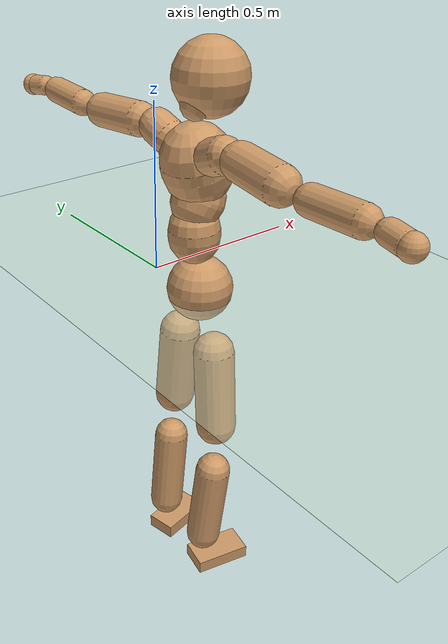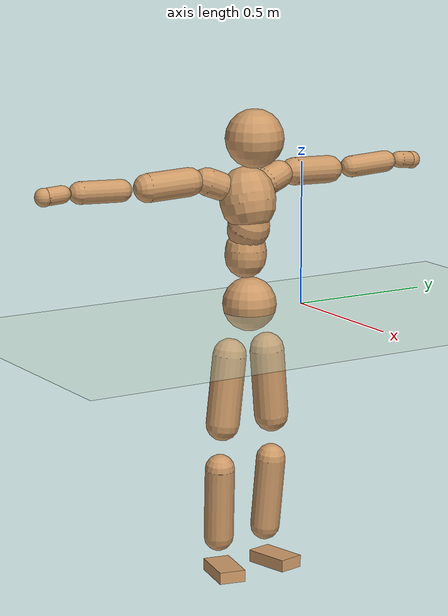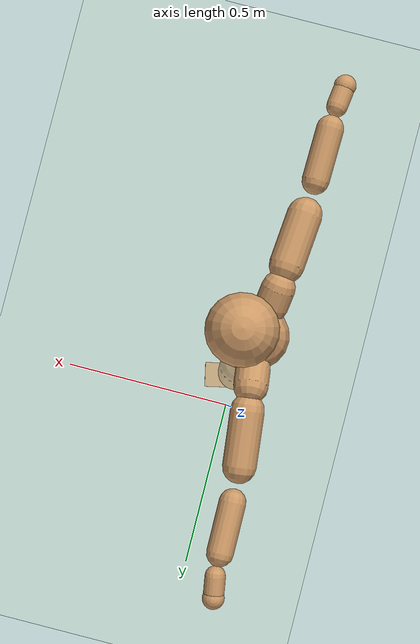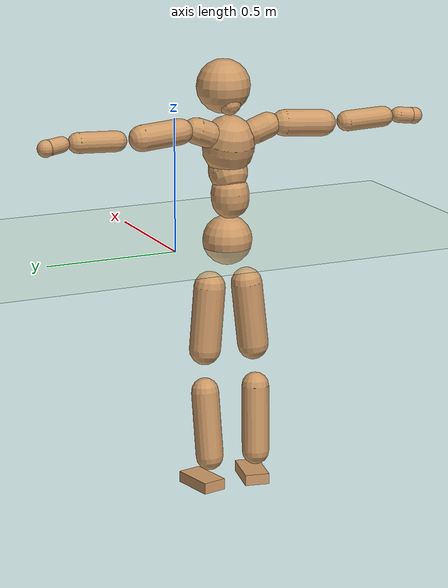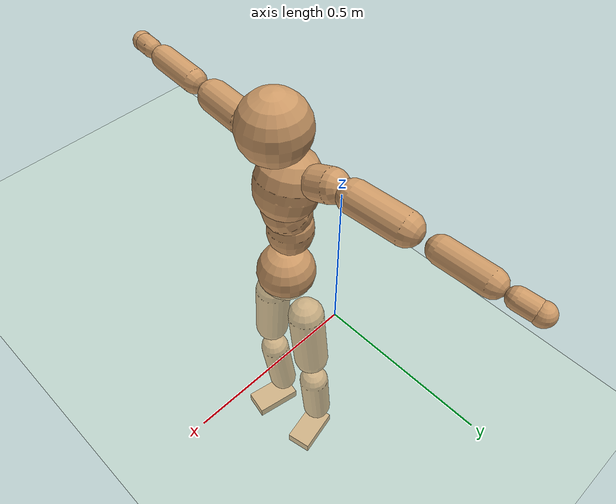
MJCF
<mujoco model="humanoid">
  <compiler coordinate="local" angle="radian"/>
  <default>
    <joint damping="0.0" armature="0.01" stiffness="0.0" limited="true"/>
    <geom conaffinity="1" condim="3" contype="7" margin="0.001" rgba="0.8 0.6 .4 1"/>
  </default>
  <asset>
    <texture type="skybox" builtin="gradient" rgb1=".4 .5 .6" rgb2="0 0 0" width="100" height="100"/>
    <texture builtin="flat" height="1278" mark="cross" markrgb="1 1 1" name="texgeom" random="0.01" rgb1="0.8 0.6 0.4" rgb2="0.8 0.6 0.4" type="cube" width="127"/>
    <texture builtin="checker" height="100" name="texplane" rgb1="0 0 0" rgb2="0.8 0.8 0.8" type="2d" width="100"/>
    <material name="MatPlane" reflectance="0.5" shininess="1" specular="1" texrepeat="60 60" texture="texplane"/>
    <material name="geom" texture="texgeom" texuniform="true"/>
  </asset>
  <worldbody>
    <light cutoff="100" diffuse="1 1 1" dir="-0 0 -1.3" directional="true" exponent="1" pos="0 0 1.3" specular=".1 .1 .1"/>
    <geom conaffinity="1" condim="3" name="floor" pos="0 0 0" rgba="0.8 0.9 0.8 1" size="100 100 .2" type="plane" material="MatPlane"/>
    <body name="Pelvis" pos="-0.0006 -0.2108 0.0247">
      <freejoint name="Pelvis"/>
      <geom type="sphere" contype="1" conaffinity="1" density="500" size="0.0934" pos="0.0000 0.0000 0.0000" name="Pelvis"/>
      <body name="L_Hip" pos="-0.0086 0.0703 -0.0931">
        <joint name="L_Hip_x" type="hinge" pos="0 0 0" axis="1 0 0" stiffness="800" damping="80" armature="0.02" range="-180.0000 180.0000"/>
        <joint name="L_Hip_y" type="hinge" pos="0 0 0" axis="0 1 0" stiffness="800" damping="80" armature="0.02" range="-180.0000 180.0000"/>
        <joint name="L_Hip_z" type="hinge" pos="0 0 0" axis="0 0 1" stiffness="800" damping="80" armature="0.02" range="-180.0000 180.0000"/>
        <geom type="capsule" contype="1" conaffinity="1" density="500" fromto="-0.0014 0.0071 -0.0795 -0.0055 0.0285 -0.3181" size="0.0597" name="L_Hip"/>
        <body name="L_Knee" pos="-0.0069 0.0356 -0.3976">
          <joint name="L_Knee_x" type="hinge" pos="0 0 0" axis="1 0 0" stiffness="800" damping="80" armature="0.02" range="-180.0000 180.0000"/>
          <joint name="L_Knee_y" type="hinge" pos="0 0 0" axis="0 1 0" stiffness="800" damping="80" armature="0.02" range="-180.0000 180.0000"/>
          <joint name="L_Knee_z" type="hinge" pos="0 0 0" axis="0 0 1" stiffness="800" damping="80" armature="0.02" range="-180.0000 180.0000"/>
          <geom type="capsule" contype="1" conaffinity="1" density="500" fromto="-0.0088 -0.0023 -0.0839 -0.0353 -0.0092 -0.3357" size="0.0521" name="L_Knee"/>
          <body name="L_Ankle" pos="-0.0441 -0.0114 -0.4196">
            <joint name="L_Ankle_x" type="hinge" pos="0 0 0" axis="1 0 0" stiffness="800" damping="80" armature="0.02" range="-180.0000 180.0000"/>
            <joint name="L_Ankle_y" type="hinge" pos="0 0 0" axis="0 1 0" stiffness="800" damping="80" armature="0.02" range="-180.0000 180.0000"/>
            <joint name="L_Ankle_z" type="hinge" pos="0 0 0" axis="0 0 1" stiffness="800" damping="80" armature="0.02" range="-180.0000 180.0000"/>
            <geom type="box" contype="1" conaffinity="1" density="500" pos="0.0588 0.0127 -0.0296" size="0.0827 0.0456 0.0213" quat="0.9944 0.0000 0.0000 0.1058" name="L_Ankle"/>
            <body name="L_Toe" pos="0.1176 0.0253 -0.0592">
              <joint name="L_Toe_x" type="hinge" pos="0 0 0" axis="1 0 0" stiffness="500" damping="50" armature="0.02" range="-180.0000 180.0000"/>
              <joint name="L_Toe_y" type="hinge" pos="0 0 0" axis="0 1 0" stiffness="500" damping="50" armature="0.02" range="-180.0000 180.0000"/>
              <joint name="L_Toe_z" type="hinge" pos="0 0 0" axis="0 0 1" stiffness="500" damping="50" armature="0.02" range="-180.0000 180.0000"/>
              <geom type="box" contype="1" conaffinity="1" density="500" pos="0.0000 0.0000 0.0293" size="0.0009 0.0023 0.0011" quat="0.9937 0.0000 0.0000 0.1120" name="L_Toe"/>
            </body>
          </body>
        </body>
      </body>
      <body name="R_Hip" pos="-0.0046 -0.0678 -0.0926">
        <joint name="R_Hip_x" type="hinge" pos="0 0 0" axis="1 0 0" stiffness="800" damping="80" armature="0.02" range="-180.0000 180.0000"/>
        <joint name="R_Hip_y" type="hinge" pos="0 0 0" axis="0 1 0" stiffness="800" damping="80" armature="0.02" range="-180.0000 180.0000"/>
        <joint name="R_Hip_z" type="hinge" pos="0 0 0" axis="0 0 1" stiffness="800" damping="80" armature="0.02" range="-180.0000 180.0000"/>
        <geom type="capsule" contype="1" conaffinity="1" density="500" fromto="-0.0019 -0.0084 -0.0809 -0.0074 -0.0334 -0.3237" size="0.0588" name="R_Hip"/>
        <body name="R_Knee" pos="-0.0093 -0.0418 -0.4047">
          <joint name="R_Knee_x" type="hinge" pos="0 0 0" axis="1 0 0" stiffness="800" damping="80" armature="0.02" range="-180.0000 180.0000"/>
          <joint name="R_Knee_y" type="hinge" pos="0 0 0" axis="0 1 0" stiffness="800" damping="80" armature="0.02" range="-180.0000 180.0000"/>
          <joint name="R_Knee_z" type="hinge" pos="0 0 0" axis="0 0 1" stiffness="800" damping="80" armature="0.02" range="-180.0000 180.0000"/>
          <geom type="capsule" contype="1" conaffinity="1" density="500" fromto="-0.0084 0.0030 -0.0841 -0.0337 0.0122 -0.3365" size="0.0524" name="R_Knee"/>
          <body name="R_Ankle" pos="-0.0422 0.0152 -0.4206">
            <joint name="R_Ankle_x" type="hinge" pos="0 0 0" axis="1 0 0" stiffness="800" damping="80" armature="0.02" range="-180.0000 180.0000"/>
            <joint name="R_Ankle_y" type="hinge" pos="0 0 0" axis="0 1 0" stiffness="800" damping="80" armature="0.02" range="-180.0000 180.0000"/>
            <joint name="R_Ankle_z" type="hinge" pos="0 0 0" axis="0 0 1" stiffness="800" damping="80" armature="0.02" range="-180.0000 180.0000"/>
            <geom type="box" contype="1" conaffinity="1" density="500" pos="0.0606 -0.0119 -0.0248" size="0.0848 0.0466 0.0208" quat="0.9953 0.0000 0.0000 -0.0970" name="R_Ankle"/>
            <body name="R_Toe" pos="0.1211 -0.0238 -0.0496">
              <joint name="R_Toe_x" type="hinge" pos="0 0 0" axis="1 0 0" stiffness="500" damping="50" armature="0.02" range="-180.0000 180.0000"/>
              <joint name="R_Toe_y" type="hinge" pos="0 0 0" axis="0 1 0" stiffness="500" damping="50" armature="0.02" range="-180.0000 180.0000"/>
              <joint name="R_Toe_z" type="hinge" pos="0 0 0" axis="0 0 1" stiffness="500" damping="50" armature="0.02" range="-180.0000 180.0000"/>
              <geom type="box" contype="1" conaffinity="1" density="500" pos="0.0000 0.0000 0.0274" size="0.0008 0.0023 0.0012" quat="0.9962 0.0000 0.0000 -0.0876" name="R_Toe"/>
            </body>
          </body>
        </body>
      </body>
      <body name="Torso" pos="-0.0224 -0.0029 0.1067">
        <joint name="Torso_x" type="hinge" pos="0 0 0" axis="1 0 0" stiffness="1000" damping="100" armature="0.02" range="-180.0000 180.0000"/>
        <joint name="Torso_y" type="hinge" pos="0 0 0" axis="0 1 0" stiffness="1000" damping="100" armature="0.02" range="-180.0000 180.0000"/>
        <joint name="Torso_z" type="hinge" pos="0 0 0" axis="0 0 1" stiffness="1000" damping="100" armature="0.02" range="-180.0000 180.0000"/>
        <geom type="capsule" contype="1" conaffinity="1" density="500" fromto="-0.0008 0.0025 0.0783 -0.0005 0.0016 0.0522" size="0.0713" name="Torso"/>
        <body name="Spine" pos="-0.0013 0.0041 0.1304">
          <joint name="Spine_x" type="hinge" pos="0 0 0" axis="1 0 0" stiffness="1000" damping="100" armature="0.02" range="-180.0000 180.0000"/>
          <joint name="Spine_y" type="hinge" pos="0 0 0" axis="0 1 0" stiffness="1000" damping="100" armature="0.02" range="-180.0000 180.0000"/>
          <joint name="Spine_z" type="hinge" pos="0 0 0" axis="0 0 1" stiffness="1000" damping="100" armature="0.02" range="-180.0000 180.0000"/>
          <geom type="capsule" contype="1" conaffinity="1" density="500" fromto="0.0172 0.0009 0.0310 0.0115 0.0006 0.0207" size="0.0729" name="Spine"/>
          <body name="Chest" pos="0.0286 0.0016 0.0517">
            <joint name="Chest_x" type="hinge" pos="0 0 0" axis="1 0 0" stiffness="1000" damping="100" armature="0.02" range="-180.0000 180.0000"/>
            <joint name="Chest_y" type="hinge" pos="0 0 0" axis="0 1 0" stiffness="1000" damping="100" armature="0.02" range="-180.0000 180.0000"/>
            <joint name="Chest_z" type="hinge" pos="0 0 0" axis="0 0 1" stiffness="1000" damping="100" armature="0.02" range="-180.0000 180.0000"/>
            <geom type="capsule" contype="1" conaffinity="1" density="500" fromto="-0.0239 -0.0011 0.0889 -0.0159 -0.0007 0.0593" size="0.0963" name="Chest"/>
            <body name="Neck" pos="-0.0391 -0.0031 0.2125">
              <joint name="Neck_x" type="hinge" pos="0 0 0" axis="1 0 0" stiffness="500" damping="50" armature="0.02" range="-180.0000 180.0000"/>
              <joint name="Neck_y" type="hinge" pos="0 0 0" axis="0 1 0" stiffness="500" damping="50" armature="0.02" range="-180.0000 180.0000"/>
              <joint name="Neck_z" type="hinge" pos="0 0 0" axis="0 0 1" stiffness="500" damping="50" armature="0.02" range="-180.0000 180.0000"/>
              <geom type="capsule" contype="1" conaffinity="1" density="500" fromto="0.0121 0.0009 0.0146 0.0484 0.0035 0.0585" size="0.0416" name="Neck"/>
              <body name="Head" pos="0.0605 0.0043 0.0732">
                <joint name="Head_x" type="hinge" pos="0 0 0" axis="1 0 0" stiffness="500" damping="50" armature="0.02" range="-180.0000 180.0000"/>
                <joint name="Head_y" type="hinge" pos="0 0 0" axis="0 1 0" stiffness="500" damping="50" armature="0.02" range="-180.0000 180.0000"/>
                <joint name="Head_z" type="hinge" pos="0 0 0" axis="0 0 1" stiffness="500" damping="50" armature="0.02" range="-180.0000 180.0000"/>
                <geom type="sphere" contype="1" conaffinity="1" density="500" size="0.1008" pos="0.0000 0.0000 0.0000" name="Head"/>
              </body>
            </body>
            <body name="L_Thorax" pos="-0.0375 0.0746 0.1171">
              <joint name="L_Thorax_x" type="hinge" pos="0 0 0" axis="1 0 0" stiffness="500" damping="50" armature="0.02" range="-180.0000 180.0000"/>
              <joint name="L_Thorax_y" type="hinge" pos="0 0 0" axis="0 1 0" stiffness="500" damping="50" armature="0.02" range="-180.0000 180.0000"/>
              <joint name="L_Thorax_z" type="hinge" pos="0 0 0" axis="0 0 1" stiffness="500" damping="50" armature="0.02" range="-180.0000 180.0000"/>
              <geom type="capsule" contype="1" conaffinity="1" density="500" fromto="-0.0017 0.0160 0.0062 -0.0067 0.0640 0.0249" size="0.049" name="L_Thorax"/>
              <body name="L_Shoulder" pos="-0.0083 0.0799 0.0312">
                <joint name="L_Shoulder_x" type="hinge" pos="0 0 0" axis="1 0 0" stiffness="500" damping="50" armature="0.02" range="-720.0000 720.0000"/>
                <joint name="L_Shoulder_y" type="hinge" pos="0 0 0" axis="0 1 0" stiffness="500" damping="50" armature="0.02" range="-720.0000 720.0000"/>
                <joint name="L_Shoulder_z" type="hinge" pos="0 0 0" axis="0 0 1" stiffness="500" damping="50" armature="0.02" range="-720.0000 720.0000"/>
                <geom type="capsule" contype="1" conaffinity="1" density="500" fromto="-0.0058 0.0517 -0.0027 -0.0232 0.2068 -0.0107" size="0.048" name="L_Shoulder"/>
                <body name="L_Elbow" pos="-0.029 0.2585 -0.0133">
                  <joint name="L_Elbow_x" type="hinge" pos="0 0 0" axis="1 0 0" stiffness="500" damping="50" armature="0.02" range="-720.0000 720.0000"/>
                  <joint name="L_Elbow_y" type="hinge" pos="0 0 0" axis="0 1 0" stiffness="500" damping="50" armature="0.02" range="-720.0000 720.0000"/>
                  <joint name="L_Elbow_z" type="hinge" pos="0 0 0" axis="0 0 1" stiffness="500" damping="50" armature="0.02" range="-720.0000 720.0000"/>
                  <geom type="capsule" contype="1" conaffinity="1" density="500" fromto="-0.0004 0.0481 0.0021 -0.0014 0.1925 0.0086" size="0.0378" name="L_Elbow"/>
                  <body name="L_Wrist" pos="-0.0018 0.2406 0.0107">
                    <joint name="L_Wrist_x" type="hinge" pos="0 0 0" axis="1 0 0" stiffness="300" damping="30" armature="0.02" range="-180.0000 180.0000"/>
                    <joint name="L_Wrist_y" type="hinge" pos="0 0 0" axis="0 1 0" stiffness="300" damping="30" armature="0.02" range="-180.0000 180.0000"/>
                    <joint name="L_Wrist_z" type="hinge" pos="0 0 0" axis="0 0 1" stiffness="300" damping="30" armature="0.02" range="-180.0000 180.0000"/>
                    <geom type="capsule" contype="1" conaffinity="1" density="500" fromto="-0.0026 0.0154 -0.0019 -0.0104 0.0617 -0.0075" size="0.0291" name="L_Wrist"/>
                    <body name="L_Hand" pos="-0.013 0.0771 -0.0094">
                      <joint name="L_Hand_x" type="hinge" pos="0 0 0" axis="1 0 0" stiffness="300" damping="30" armature="0.02" range="-180.0000 180.0000"/>
                      <joint name="L_Hand_y" type="hinge" pos="0 0 0" axis="0 1 0" stiffness="300" damping="30" armature="0.02" range="-180.0000 180.0000"/>
                      <joint name="L_Hand_z" type="hinge" pos="0 0 0" axis="0 0 1" stiffness="300" damping="30" armature="0.02" range="-180.0000 180.0000"/>
                      <geom type="sphere" contype="1" conaffinity="1" density="500" size="0.0312" pos="0.0000 0.0000 0.0000" name="L_Hand"/>
                    </body>
                  </body>
                </body>
              </body>
            </body>
            <body name="R_Thorax" pos="-0.0427 -0.0769 0.1151">
              <joint name="R_Thorax_x" type="hinge" pos="0 0 0" axis="1 0 0" stiffness="500" damping="50" armature="0.02" range="-180.0000 180.0000"/>
              <joint name="R_Thorax_y" type="hinge" pos="0 0 0" axis="0 1 0" stiffness="500" damping="50" armature="0.02" range="-180.0000 180.0000"/>
              <joint name="R_Thorax_z" type="hinge" pos="0 0 0" axis="0 0 1" stiffness="500" damping="50" armature="0.02" range="-180.0000 180.0000"/>
              <geom type="capsule" contype="1" conaffinity="1" density="500" fromto="-0.0019 -0.0166 0.0065 -0.0078 -0.0666 0.0261" size="0.0482" name="R_Thorax"/>
              <body name="R_Shoulder" pos="-0.0097 -0.0832 0.0326">
                <joint name="R_Shoulder_x" type="hinge" pos="0 0 0" axis="1 0 0" stiffness="500" damping="50" armature="0.02" range="-720.0000 720.0000"/>
                <joint name="R_Shoulder_y" type="hinge" pos="0 0 0" axis="0 1 0" stiffness="500" damping="50" armature="0.02" range="-720.0000 720.0000"/>
                <joint name="R_Shoulder_z" type="hinge" pos="0 0 0" axis="0 0 1" stiffness="500" damping="50" armature="0.02" range="-720.0000 720.0000"/>
                <geom type="capsule" contype="1" conaffinity="1" density="500" fromto="-0.0047 -0.0499 -0.0028 -0.0187 -0.1997 -0.0114" size="0.0498" name="R_Shoulder"/>
                <body name="R_Elbow" pos="-0.0234 -0.2496 -0.0142">
                  <joint name="R_Elbow_x" type="hinge" pos="0 0 0" axis="1 0 0" stiffness="500" damping="50" armature="0.02" range="-720.0000 720.0000"/>
                  <joint name="R_Elbow_y" type="hinge" pos="0 0 0" axis="0 1 0" stiffness="500" damping="50" armature="0.02" range="-720.0000 720.0000"/>
                  <joint name="R_Elbow_z" type="hinge" pos="0 0 0" axis="0 0 1" stiffness="500" damping="50" armature="0.02" range="-720.0000 720.0000"/>
                  <geom type="capsule" contype="1" conaffinity="1" density="500" fromto="-0.0011 -0.0500 0.0020 -0.0042 -0.2001 0.0080" size="0.0385" name="R_Elbow"/>
                  <body name="R_Wrist" pos="-0.0053 -0.2501 0.01">
                    <joint name="R_Wrist_x" type="hinge" pos="0 0 0" axis="1 0 0" stiffness="300" damping="30" armature="0.02" range="-180.0000 180.0000"/>
                    <joint name="R_Wrist_y" type="hinge" pos="0 0 0" axis="0 1 0" stiffness="300" damping="30" armature="0.02" range="-180.0000 180.0000"/>
                    <joint name="R_Wrist_z" type="hinge" pos="0 0 0" axis="0 0 1" stiffness="300" damping="30" armature="0.02" range="-180.0000 180.0000"/>
                    <geom type="capsule" contype="1" conaffinity="1" density="500" fromto="-0.0020 -0.0156 -0.0014 -0.0080 -0.0622 -0.0056" size="0.03" name="R_Wrist"/>
                    <body name="R_Hand" pos="-0.01 -0.0778 -0.007">
                      <joint name="R_Hand_x" type="hinge" pos="0 0 0" axis="1 0 0" stiffness="300" damping="30" armature="0.02" range="-180.0000 180.0000"/>
                      <joint name="R_Hand_y" type="hinge" pos="0 0 0" axis="0 1 0" stiffness="300" damping="30" armature="0.02" range="-180.0000 180.0000"/>
                      <joint name="R_Hand_z" type="hinge" pos="0 0 0" axis="0 0 1" stiffness="300" damping="30" armature="0.02" range="-180.0000 180.0000"/>
                      <geom type="sphere" contype="1" conaffinity="1" density="500" size="0.0314" pos="0.0000 0.0000 0.0000" name="R_Hand"/>
                    </body>
                  </body>
                </body>
              </body>
            </body>
          </body>
        </body>
      </body>
    </body>
  </worldbody>
  <actuator>
    <motor name="L_Hip_x" joint="L_Hip_x" gear="500"/>
    <motor name="L_Hip_y" joint="L_Hip_y" gear="500"/>
    <motor name="L_Hip_z" joint="L_Hip_z" gear="500"/>
    <motor name="L_Knee_x" joint="L_Knee_x" gear="500"/>
    <motor name="L_Knee_y" joint="L_Knee_y" gear="500"/>
    <motor name="L_Knee_z" joint="L_Knee_z" gear="500"/>
    <motor name="L_Ankle_x" joint="L_Ankle_x" gear="500"/>
    <motor name="L_Ankle_y" joint="L_Ankle_y" gear="500"/>
    <motor name="L_Ankle_z" joint="L_Ankle_z" gear="500"/>
    <motor name="L_Toe_x" joint="L_Toe_x" gear="500"/>
    <motor name="L_Toe_y" joint="L_Toe_y" gear="500"/>
    <motor name="L_Toe_z" joint="L_Toe_z" gear="500"/>
    <motor name="R_Hip_x" joint="R_Hip_x" gear="500"/>
    <motor name="R_Hip_y" joint="R_Hip_y" gear="500"/>
    <motor name="R_Hip_z" joint="R_Hip_z" gear="500"/>
    <motor name="R_Knee_x" joint="R_Knee_x" gear="500"/>
    <motor name="R_Knee_y" joint="R_Knee_y" gear="500"/>
    <motor name="R_Knee_z" joint="R_Knee_z" gear="500"/>
    <motor name="R_Ankle_x" joint="R_Ankle_x" gear="500"/>
    <motor name="R_Ankle_y" joint="R_Ankle_y" gear="500"/>
    <motor name="R_Ankle_z" joint="R_Ankle_z" gear="500"/>
    <motor name="R_Toe_x" joint="R_Toe_x" gear="500"/>
    <motor name="R_Toe_y" joint="R_Toe_y" gear="500"/>
    <motor name="R_Toe_z" joint="R_Toe_z" gear="500"/>
    <motor name="Torso_x" joint="Torso_x" gear="500"/>
    <motor name="Torso_y" joint="Torso_y" gear="500"/>
    <motor name="Torso_z" joint="Torso_z" gear="500"/>
    <motor name="Spine_x" joint="Spine_x" gear="500"/>
    <motor name="Spine_y" joint="Spine_y" gear="500"/>
    <motor name="Spine_z" joint="Spine_z" gear="500"/>
    <motor name="Chest_x" joint="Chest_x" gear="500"/>
    <motor name="Chest_y" joint="Chest_y" gear="500"/>
    <motor name="Chest_z" joint="Chest_z" gear="500"/>
    <motor name="Neck_x" joint="Neck_x" gear="500"/>
    <motor name="Neck_y" joint="Neck_y" gear="500"/>
    <motor name="Neck_z" joint="Neck_z" gear="500"/>
    <motor name="Head_x" joint="Head_x" gear="500"/>
    <motor name="Head_y" joint="Head_y" gear="500"/>
    <motor name="Head_z" joint="Head_z" gear="500"/>
    <motor name="L_Thorax_x" joint="L_Thorax_x" gear="500"/>
    <motor name="L_Thorax_y" joint="L_Thorax_y" gear="500"/>
    <motor name="L_Thorax_z" joint="L_Thorax_z" gear="500"/>
    <motor name="L_Shoulder_x" joint="L_Shoulder_x" gear="500"/>
    <motor name="L_Shoulder_y" joint="L_Shoulder_y" gear="500"/>
    <motor name="L_Shoulder_z" joint="L_Shoulder_z" gear="500"/>
    <motor name="L_Elbow_x" joint="L_Elbow_x" gear="500"/>
    <motor name="L_Elbow_y" joint="L_Elbow_y" gear="500"/>
    <motor name="L_Elbow_z" joint="L_Elbow_z" gear="500"/>
    <motor name="L_Wrist_x" joint="L_Wrist_x" gear="500"/>
    <motor name="L_Wrist_y" joint="L_Wrist_y" gear="500"/>
    <motor name="L_Wrist_z" joint="L_Wrist_z" gear="500"/>
    <motor name="L_Hand_x" joint="L_Hand_x" gear="500"/>
    <motor name="L_Hand_y" joint="L_Hand_y" gear="500"/>
    <motor name="L_Hand_z" joint="L_Hand_z" gear="500"/>
    <motor name="R_Thorax_x" joint="R_Thorax_x" gear="500"/>
    <motor name="R_Thorax_y" joint="R_Thorax_y" gear="500"/>
    <motor name="R_Thorax_z" joint="R_Thorax_z" gear="500"/>
    <motor name="R_Shoulder_x" joint="R_Shoulder_x" gear="500"/>
    <motor name="R_Shoulder_y" joint="R_Shoulder_y" gear="500"/>
    <motor name="R_Shoulder_z" joint="R_Shoulder_z" gear="500"/>
    <motor name="R_Elbow_x" joint="R_Elbow_x" gear="500"/>
    <motor name="R_Elbow_y" joint="R_Elbow_y" gear="500"/>
    <motor name="R_Elbow_z" joint="R_Elbow_z" gear="500"/>
    <motor name="R_Wrist_x" joint="R_Wrist_x" gear="500"/>
    <motor name="R_Wrist_y" joint="R_Wrist_y" gear="500"/>
    <motor name="R_Wrist_z" joint="R_Wrist_z" gear="500"/>
    <motor name="R_Hand_x" joint="R_Hand_x" gear="500"/>
    <motor name="R_Hand_y" joint="R_Hand_y" gear="500"/>
    <motor name="R_Hand_z" joint="R_Hand_z" gear="500"/>
  </actuator>
  <contact>
    <exclude body1="Torso" body2="Chest"/>
    <exclude body1="Head" body2="Chest"/>
    <exclude body1="R_Knee" body2="R_Toe"/>
    <exclude body1="R_Knee" body2="L_Ankle"/>
    <exclude body1="R_Knee" body2="L_Toe"/>
    <exclude body1="L_Knee" body2="L_Toe"/>
    <exclude body1="L_Knee" body2="R_Ankle"/>
    <exclude body1="L_Knee" body2="R_Toe"/>
    <exclude body1="L_Shoulder" body2="Chest"/>
    <exclude body1="R_Shoulder" body2="Chest"/>
  </contact>
  <sensor/>
  <size njmax="700" nconmax="700"/>
</mujoco>
